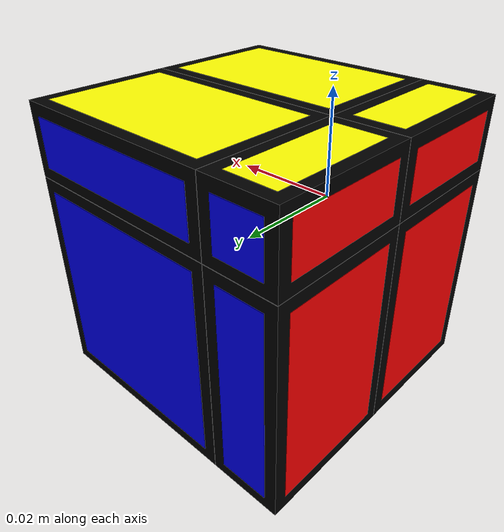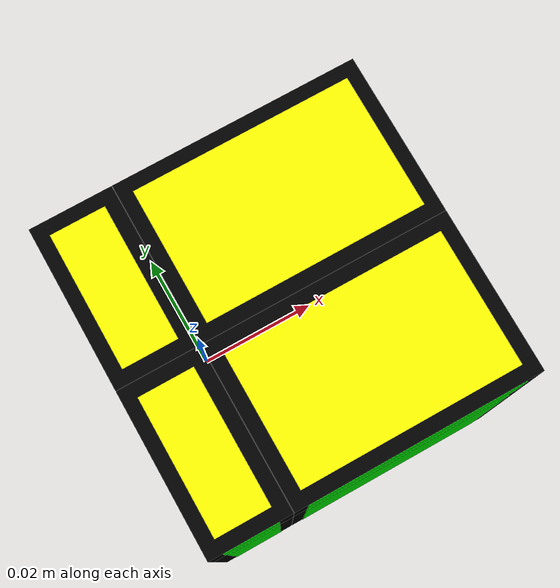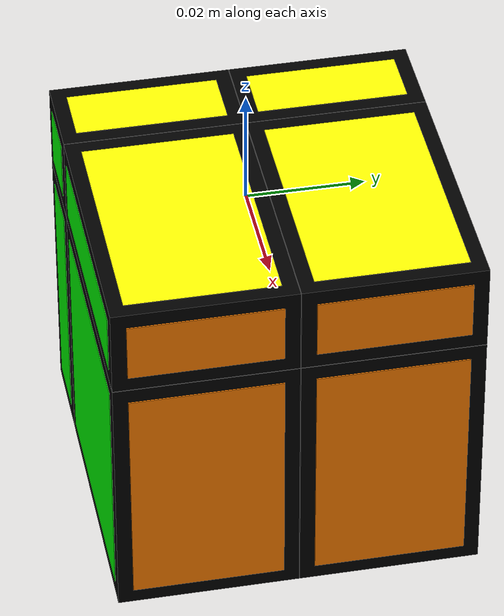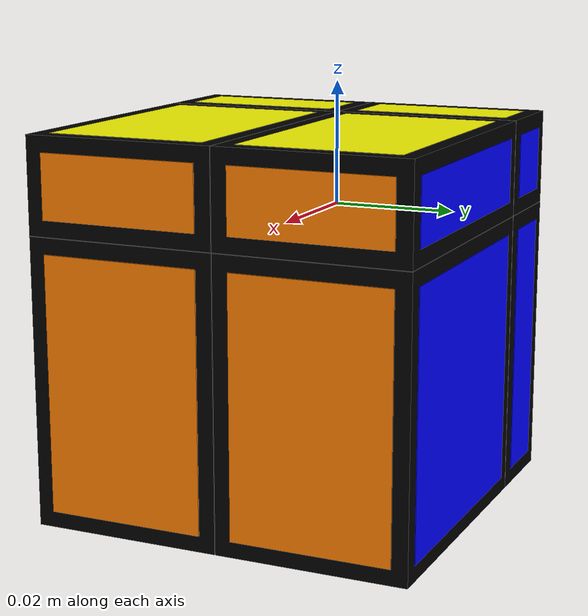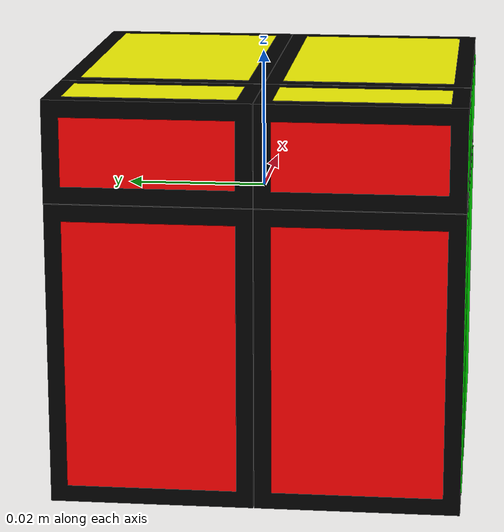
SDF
<?xml version="1.0" ?>
<sdf version="1.7">
	<model name="mirror_cube_2x2">
		<link name="center"/>
		<link name="cubie_0_0_0">
			<pose>-0.007549999999999999 -0.01505 -0.02255 0.0 0.0 0.0</pose>
			<inertial>
				<mass>0.007897499999999998</mass>
				<inertia>
					<ixx>1.925015624999999e-06</ixx>
					<ixy>0.0</ixy>
					<ixz>0.0</ixz>
					<iyy>1.4807812499999996e-06</iyy>
					<iyz>0.0</iyz>
					<izz>7.403906249999998e-07</izz>
				</inertia>
			</inertial>
			<collision name="collision">
				<geometry>
					<box>
						<size>0.015 0.03 0.045</size>
					</box>
				</geometry>
				<surface>
					<friction>
						<ode>
							<mu>0.6</mu>
							<mu2>0.6</mu2>
						</ode>
					</friction>
				</surface>
			</collision>
			<visual name="black">
				<geometry>
					<box>
						<size>0.015 0.03 0.045</size>
					</box>
				</geometry>
				<material>
					<diffuse>0 0 0 1</diffuse>
				</material>
			</visual>
			<visual name="red">
				<pose>-0.0075 0.0 0.0 0.0 0.0 0.0</pose>
				<geometry>
					<box>
						<size>0.0001 0.025 0.04</size>
					</box>
				</geometry>
				<material>
					<diffuse>1 0 0 1</diffuse>
				</material>
			</visual>
			<visual name="green">
				<pose>0.0 -0.015 0.0 0.0 0.0 0.0</pose>
				<geometry>
					<box>
						<size>0.01 0.00025 0.04</size>
					</box>
				</geometry>
				<material>
					<diffuse>0 1 0 1</diffuse>
				</material>
			</visual>
			<visual name="white">
				<pose>0.0 0.0 -0.0225 0.0 0.0 0.0</pose>
				<geometry>
					<box>
						<size>0.01 0.025 0.0004</size>
					</box>
				</geometry>
				<material>
					<diffuse>1 1 1 1</diffuse>
				</material>
			</visual>
		</link>
		<joint name="ball_0_0_0" type="ball">
			<pose>0.007549999999999999 0.01505 0.02255 -0.0 -0.0 -0.0</pose>
			<parent>center</parent>
			<child>cubie_0_0_0</child>
			<axis>
				<dynamics>
					<damping>0.1</damping>
				</dynamics>
				<limit>
					<effort>0</effort>
				</limit>
			</axis>
		</joint>
		<link name="cubie_0_0_1">
			<pose>-0.007549999999999999 -0.01505 0.007549999999999999 0.0 0.0 0.0</pose>
			<inertial>
				<mass>0.0026325</mass>
				<inertia>
					<ixx>2.4679687499999995e-07</ixx>
					<ixy>0.0</ixy>
					<ixz>0.0</ixz>
					<iyy>9.871874999999999e-08</iyy>
					<iyz>0.0</iyz>
					<izz>2.4679687499999995e-07</izz>
				</inertia>
			</inertial>
			<collision name="collision">
				<geometry>
					<box>
						<size>0.015 0.03 0.015</size>
					</box>
				</geometry>
				<surface>
					<friction>
						<ode>
							<mu>0.6</mu>
							<mu2>0.6</mu2>
						</ode>
					</friction>
				</surface>
			</collision>
			<visual name="black">
				<geometry>
					<box>
						<size>0.015 0.03 0.015</size>
					</box>
				</geometry>
				<material>
					<diffuse>0 0 0 1</diffuse>
				</material>
			</visual>
			<visual name="red">
				<pose>-0.0075 0.0 0.0 0.0 0.0 0.0</pose>
				<geometry>
					<box>
						<size>0.0001 0.025 0.01</size>
					</box>
				</geometry>
				<material>
					<diffuse>1 0 0 1</diffuse>
				</material>
			</visual>
			<visual name="green">
				<pose>0.0 -0.015 0.0 0.0 0.0 0.0</pose>
				<geometry>
					<box>
						<size>0.01 0.00025 0.01</size>
					</box>
				</geometry>
				<material>
					<diffuse>0 1 0 1</diffuse>
				</material>
			</visual>
			<visual name="yellow">
				<pose>0.0 0.0 0.0075 0.0 0.0 0.0</pose>
				<geometry>
					<box>
						<size>0.01 0.025 0.0001</size>
					</box>
				</geometry>
				<material>
					<diffuse>1 1 0 1</diffuse>
				</material>
			</visual>
		</link>
		<joint name="ball_0_0_1" type="ball">
			<pose>0.007549999999999999 0.01505 -0.007549999999999999 -0.0 -0.0 -0.0</pose>
			<parent>center</parent>
			<child>cubie_0_0_1</child>
			<axis>
				<dynamics>
					<damping>0.1</damping>
				</dynamics>
				<limit>
					<effort>0</effort>
				</limit>
			</axis>
		</joint>
		<link name="cubie_0_1_0">
			<pose>-0.007549999999999999 0.01505 -0.02255 0.0 0.0 0.0</pose>
			<inertial>
				<mass>0.007897499999999998</mass>
				<inertia>
					<ixx>1.925015624999999e-06</ixx>
					<ixy>0.0</ixy>
					<ixz>0.0</ixz>
					<iyy>1.4807812499999996e-06</iyy>
					<iyz>0.0</iyz>
					<izz>7.403906249999998e-07</izz>
				</inertia>
			</inertial>
			<collision name="collision">
				<geometry>
					<box>
						<size>0.015 0.03 0.045</size>
					</box>
				</geometry>
				<surface>
					<friction>
						<ode>
							<mu>0.6</mu>
							<mu2>0.6</mu2>
						</ode>
					</friction>
				</surface>
			</collision>
			<visual name="black">
				<geometry>
					<box>
						<size>0.015 0.03 0.045</size>
					</box>
				</geometry>
				<material>
					<diffuse>0 0 0 1</diffuse>
				</material>
			</visual>
			<visual name="red">
				<pose>-0.0075 0.0 0.0 0.0 0.0 0.0</pose>
				<geometry>
					<box>
						<size>0.0001 0.025 0.04</size>
					</box>
				</geometry>
				<material>
					<diffuse>1 0 0 1</diffuse>
				</material>
			</visual>
			<visual name="blue">
				<pose>0.0 0.015 0.0 0.0 0.0 0.0</pose>
				<geometry>
					<box>
						<size>0.01 0.00025 0.04</size>
					</box>
				</geometry>
				<material>
					<diffuse>0 0 1 1</diffuse>
				</material>
			</visual>
			<visual name="white">
				<pose>0.0 0.0 -0.0225 0.0 0.0 0.0</pose>
				<geometry>
					<box>
						<size>0.01 0.025 0.0004</size>
					</box>
				</geometry>
				<material>
					<diffuse>1 1 1 1</diffuse>
				</material>
			</visual>
		</link>
		<joint name="ball_0_1_0" type="ball">
			<pose>0.007549999999999999 -0.01505 0.02255 -0.0 -0.0 -0.0</pose>
			<parent>center</parent>
			<child>cubie_0_1_0</child>
			<axis>
				<dynamics>
					<damping>0.1</damping>
				</dynamics>
				<limit>
					<effort>0</effort>
				</limit>
			</axis>
		</joint>
		<link name="cubie_0_1_1">
			<pose>-0.007549999999999999 0.01505 0.007549999999999999 0.0 0.0 0.0</pose>
			<inertial>
				<mass>0.0026325</mass>
				<inertia>
					<ixx>2.4679687499999995e-07</ixx>
					<ixy>0.0</ixy>
					<ixz>0.0</ixz>
					<iyy>9.871874999999999e-08</iyy>
					<iyz>0.0</iyz>
					<izz>2.4679687499999995e-07</izz>
				</inertia>
			</inertial>
			<collision name="collision">
				<geometry>
					<box>
						<size>0.015 0.03 0.015</size>
					</box>
				</geometry>
				<surface>
					<friction>
						<ode>
							<mu>0.6</mu>
							<mu2>0.6</mu2>
						</ode>
					</friction>
				</surface>
			</collision>
			<visual name="black">
				<geometry>
					<box>
						<size>0.015 0.03 0.015</size>
					</box>
				</geometry>
				<material>
					<diffuse>0 0 0 1</diffuse>
				</material>
			</visual>
			<visual name="red">
				<pose>-0.0075 0.0 0.0 0.0 0.0 0.0</pose>
				<geometry>
					<box>
						<size>0.0001 0.025 0.01</size>
					</box>
				</geometry>
				<material>
					<diffuse>1 0 0 1</diffuse>
				</material>
			</visual>
			<visual name="blue">
				<pose>0.0 0.015 0.0 0.0 0.0 0.0</pose>
				<geometry>
					<box>
						<size>0.01 0.00025 0.01</size>
					</box>
				</geometry>
				<material>
					<diffuse>0 0 1 1</diffuse>
				</material>
			</visual>
			<visual name="yellow">
				<pose>0.0 0.0 0.0075 0.0 0.0 0.0</pose>
				<geometry>
					<box>
						<size>0.01 0.025 0.0001</size>
					</box>
				</geometry>
				<material>
					<diffuse>1 1 0 1</diffuse>
				</material>
			</visual>
		</link>
		<joint name="ball_0_1_1" type="ball">
			<pose>0.007549999999999999 -0.01505 -0.007549999999999999 -0.0 -0.0 -0.0</pose>
			<parent>center</parent>
			<child>cubie_0_1_1</child>
			<axis>
				<dynamics>
					<damping>0.1</damping>
				</dynamics>
				<limit>
					<effort>0</effort>
				</limit>
			</axis>
		</joint>
		<link name="cubie_1_0_0">
			<pose>0.02255 -0.01505 -0.02255 0.0 0.0 0.0</pose>
			<inertial>
				<mass>0.0236925</mass>
				<inertia>
					<ixx>5.775046875e-06</ixx>
					<ixy>0.0</ixy>
					<ixz>0.0</ixz>
					<iyy>7.99621875e-06</iyy>
					<iyz>0.0</iyz>
					<izz>5.775046875e-06</izz>
				</inertia>
			</inertial>
			<collision name="collision">
				<geometry>
					<box>
						<size>0.045 0.03 0.045</size>
					</box>
				</geometry>
				<surface>
					<friction>
						<ode>
							<mu>0.6</mu>
							<mu2>0.6</mu2>
						</ode>
					</friction>
				</surface>
			</collision>
			<visual name="black">
				<geometry>
					<box>
						<size>0.045 0.03 0.045</size>
					</box>
				</geometry>
				<material>
					<diffuse>0 0 0 1</diffuse>
				</material>
			</visual>
			<visual name="orange">
				<pose>0.0225 0.0 0.0 0.0 0.0 0.0</pose>
				<geometry>
					<box>
						<size>0.0004 0.025 0.04</size>
					</box>
				</geometry>
				<material>
					<diffuse>1.0 0.5 0.0 1.0</diffuse>
				</material>
			</visual>
			<visual name="green">
				<pose>0.0 -0.015 0.0 0.0 0.0 0.0</pose>
				<geometry>
					<box>
						<size>0.04 0.00025 0.04</size>
					</box>
				</geometry>
				<material>
					<diffuse>0 1 0 1</diffuse>
				</material>
			</visual>
			<visual name="white">
				<pose>0.0 0.0 -0.0225 0.0 0.0 0.0</pose>
				<geometry>
					<box>
						<size>0.04 0.025 0.0004</size>
					</box>
				</geometry>
				<material>
					<diffuse>1 1 1 1</diffuse>
				</material>
			</visual>
		</link>
		<joint name="ball_1_0_0" type="ball">
			<pose>-0.02255 0.01505 0.02255 -0.0 -0.0 -0.0</pose>
			<parent>center</parent>
			<child>cubie_1_0_0</child>
			<axis>
				<dynamics>
					<damping>0.1</damping>
				</dynamics>
				<limit>
					<effort>0</effort>
				</limit>
			</axis>
		</joint>
		<link name="cubie_1_0_1">
			<pose>0.02255 -0.01505 0.007549999999999999 0.0 0.0 0.0</pose>
			<inertial>
				<mass>0.007897499999999998</mass>
				<inertia>
					<ixx>7.403906249999998e-07</ixx>
					<ixy>0.0</ixy>
					<ixz>0.0</ixz>
					<iyy>1.4807812499999996e-06</iyy>
					<iyz>0.0</iyz>
					<izz>1.925015624999999e-06</izz>
				</inertia>
			</inertial>
			<collision name="collision">
				<geometry>
					<box>
						<size>0.045 0.03 0.015</size>
					</box>
				</geometry>
				<surface>
					<friction>
						<ode>
							<mu>0.6</mu>
							<mu2>0.6</mu2>
						</ode>
					</friction>
				</surface>
			</collision>
			<visual name="black">
				<geometry>
					<box>
						<size>0.045 0.03 0.015</size>
					</box>
				</geometry>
				<material>
					<diffuse>0 0 0 1</diffuse>
				</material>
			</visual>
			<visual name="orange">
				<pose>0.0225 0.0 0.0 0.0 0.0 0.0</pose>
				<geometry>
					<box>
						<size>0.0004 0.025 0.01</size>
					</box>
				</geometry>
				<material>
					<diffuse>1.0 0.5 0.0 1.0</diffuse>
				</material>
			</visual>
			<visual name="green">
				<pose>0.0 -0.015 0.0 0.0 0.0 0.0</pose>
				<geometry>
					<box>
						<size>0.04 0.00025 0.01</size>
					</box>
				</geometry>
				<material>
					<diffuse>0 1 0 1</diffuse>
				</material>
			</visual>
			<visual name="yellow">
				<pose>0.0 0.0 0.0075 0.0 0.0 0.0</pose>
				<geometry>
					<box>
						<size>0.04 0.025 0.0001</size>
					</box>
				</geometry>
				<material>
					<diffuse>1 1 0 1</diffuse>
				</material>
			</visual>
		</link>
		<joint name="ball_1_0_1" type="ball">
			<pose>-0.02255 0.01505 -0.007549999999999999 -0.0 -0.0 -0.0</pose>
			<parent>center</parent>
			<child>cubie_1_0_1</child>
			<axis>
				<dynamics>
					<damping>0.1</damping>
				</dynamics>
				<limit>
					<effort>0</effort>
				</limit>
			</axis>
		</joint>
		<link name="cubie_1_1_0">
			<pose>0.02255 0.01505 -0.02255 0.0 0.0 0.0</pose>
			<inertial>
				<mass>0.0236925</mass>
				<inertia>
					<ixx>5.775046875e-06</ixx>
					<ixy>0.0</ixy>
					<ixz>0.0</ixz>
					<iyy>7.99621875e-06</iyy>
					<iyz>0.0</iyz>
					<izz>5.775046875e-06</izz>
				</inertia>
			</inertial>
			<collision name="collision">
				<geometry>
					<box>
						<size>0.045 0.03 0.045</size>
					</box>
				</geometry>
				<surface>
					<friction>
						<ode>
							<mu>0.6</mu>
							<mu2>0.6</mu2>
						</ode>
					</friction>
				</surface>
			</collision>
			<visual name="black">
				<geometry>
					<box>
						<size>0.045 0.03 0.045</size>
					</box>
				</geometry>
				<material>
					<diffuse>0 0 0 1</diffuse>
				</material>
			</visual>
			<visual name="orange">
				<pose>0.0225 0.0 0.0 0.0 0.0 0.0</pose>
				<geometry>
					<box>
						<size>0.0004 0.025 0.04</size>
					</box>
				</geometry>
				<material>
					<diffuse>1.0 0.5 0.0 1.0</diffuse>
				</material>
			</visual>
			<visual name="blue">
				<pose>0.0 0.015 0.0 0.0 0.0 0.0</pose>
				<geometry>
					<box>
						<size>0.04 0.00025 0.04</size>
					</box>
				</geometry>
				<material>
					<diffuse>0 0 1 1</diffuse>
				</material>
			</visual>
			<visual name="white">
				<pose>0.0 0.0 -0.0225 0.0 0.0 0.0</pose>
				<geometry>
					<box>
						<size>0.04 0.025 0.0004</size>
					</box>
				</geometry>
				<material>
					<diffuse>1 1 1 1</diffuse>
				</material>
			</visual>
		</link>
		<joint name="ball_1_1_0" type="ball">
			<pose>-0.02255 -0.01505 0.02255 -0.0 -0.0 -0.0</pose>
			<parent>center</parent>
			<child>cubie_1_1_0</child>
			<axis>
				<dynamics>
					<damping>0.1</damping>
				</dynamics>
				<limit>
					<effort>0</effort>
				</limit>
			</axis>
		</joint>
		<link name="cubie_1_1_1">
			<pose>0.02255 0.01505 0.007549999999999999 0.0 0.0 0.0</pose>
			<inertial>
				<mass>0.007897499999999998</mass>
				<inertia>
					<ixx>7.403906249999998e-07</ixx>
					<ixy>0.0</ixy>
					<ixz>0.0</ixz>
					<iyy>1.4807812499999996e-06</iyy>
					<iyz>0.0</iyz>
					<izz>1.925015624999999e-06</izz>
				</inertia>
			</inertial>
			<collision name="collision">
				<geometry>
					<box>
						<size>0.045 0.03 0.015</size>
					</box>
				</geometry>
				<surface>
					<friction>
						<ode>
							<mu>0.6</mu>
							<mu2>0.6</mu2>
						</ode>
					</friction>
				</surface>
			</collision>
			<visual name="black">
				<geometry>
					<box>
						<size>0.045 0.03 0.015</size>
					</box>
				</geometry>
				<material>
					<diffuse>0 0 0 1</diffuse>
				</material>
			</visual>
			<visual name="orange">
				<pose>0.0225 0.0 0.0 0.0 0.0 0.0</pose>
				<geometry>
					<box>
						<size>0.0004 0.025 0.01</size>
					</box>
				</geometry>
				<material>
					<diffuse>1.0 0.5 0.0 1.0</diffuse>
				</material>
			</visual>
			<visual name="blue">
				<pose>0.0 0.015 0.0 0.0 0.0 0.0</pose>
				<geometry>
					<box>
						<size>0.04 0.00025 0.01</size>
					</box>
				</geometry>
				<material>
					<diffuse>0 0 1 1</diffuse>
				</material>
			</visual>
			<visual name="yellow">
				<pose>0.0 0.0 0.0075 0.0 0.0 0.0</pose>
				<geometry>
					<box>
						<size>0.04 0.025 0.0001</size>
					</box>
				</geometry>
				<material>
					<diffuse>1 1 0 1</diffuse>
				</material>
			</visual>
		</link>
		<joint name="ball_1_1_1" type="ball">
			<pose>-0.02255 -0.01505 -0.007549999999999999 -0.0 -0.0 -0.0</pose>
			<parent>center</parent>
			<child>cubie_1_1_1</child>
			<axis>
				<dynamics>
					<damping>0.1</damping>
				</dynamics>
				<limit>
					<effort>0</effort>
				</limit>
			</axis>
		</joint>
	</model>
</sdf>
